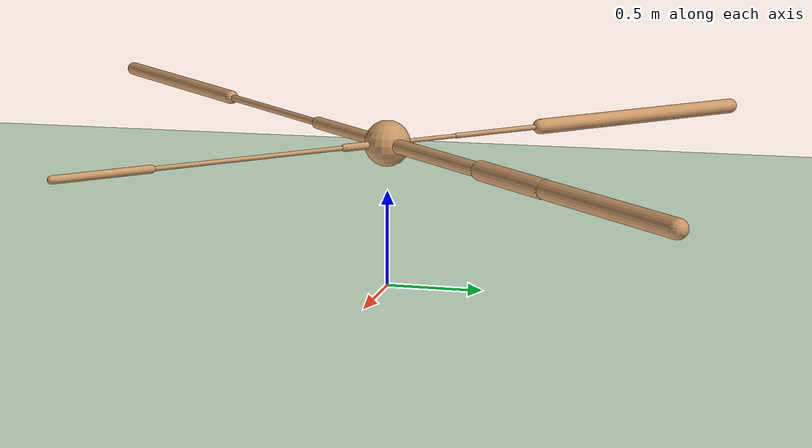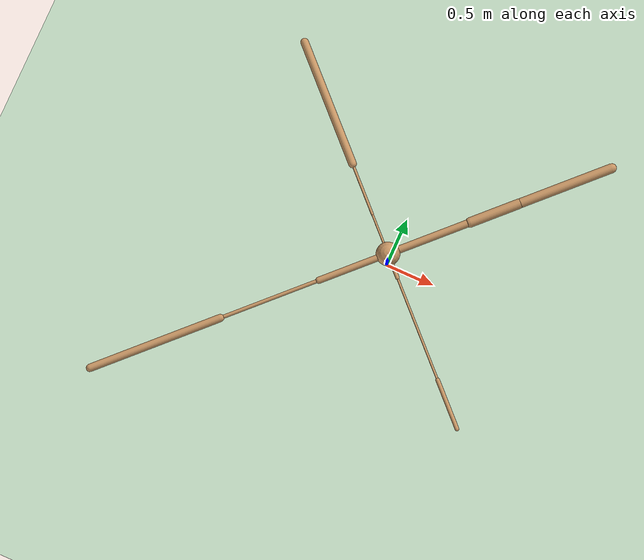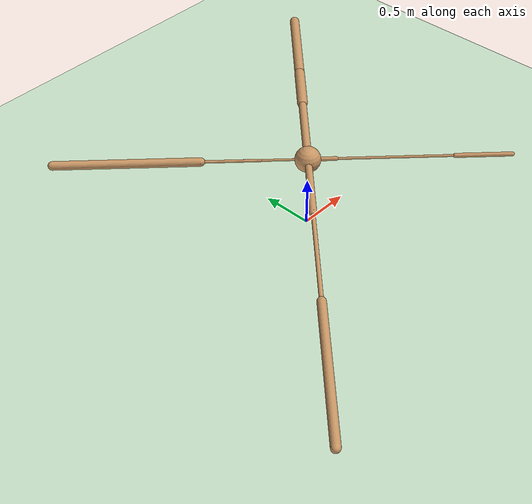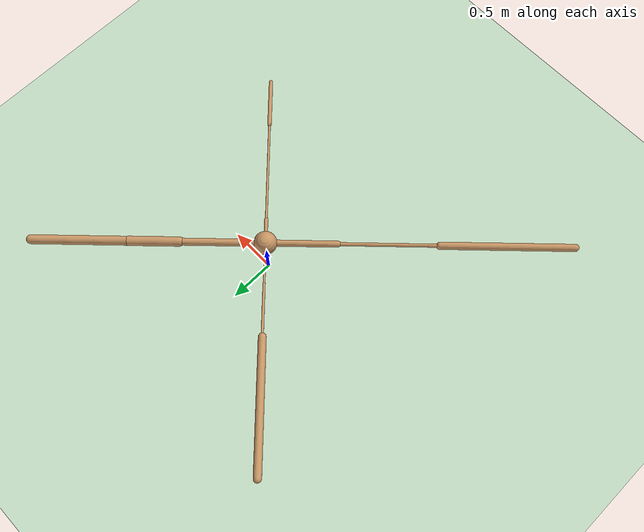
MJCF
<mujoco model="ant">
  <compiler angle="degree" coordinate="local" inertiafromgeom="true" />
  <option integrator="RK4" timestep="0.01" />
  <custom>
    <numeric data="0.0 0.0 0.55 1.0 0.0 0.0 0.0 0.0 1.0 0.0 -1.0 0.0 -1.0 0.0 1.0" name="init_qpos" />
  </custom>
  <default>
    <joint armature="1" damping="1" limited="true" />
    <geom conaffinity="0" condim="3" density="5.0" friction="1 0.5 0.5" margin="0.01" rgba="0.8 0.6 0.4 1" />
  </default>
  <asset>
    <texture builtin="gradient" height="100" rgb1="1 1 1" rgb2="0 0 0" type="skybox" width="100" />
    <texture builtin="flat" height="1278" mark="cross" markrgb="1 1 1" name="texgeom" random="0.01" rgb1="0.8 0.6 0.4" rgb2="0.8 0.6 0.4" type="cube" width="127" />
    <texture builtin="checker" height="100" name="texplane" rgb1="0 0 0" rgb2="0.8 0.8 0.8" type="2d" width="100" />
    <material name="MatPlane" reflectance="0.5" shininess="1" specular="1" texrepeat="60 60" texture="texplane" />
    <material name="geom" texture="texgeom" texuniform="true" />
  </asset>
  <worldbody>
    <light cutoff="100" diffuse="1 1 1" dir="-0 0 -1.3" directional="true" exponent="1" pos="0 0 1.3" specular=".1 .1 .1" />
    <geom conaffinity="1" condim="3" material="MatPlane" name="floor" pos="0 0 0" rgba="0.8 0.9 0.8 1" size="40 40 40" type="plane" />
    <body name="torso" pos="0 0 0.75">
      <camera name="track" mode="trackcom" pos="0 -11 5" xyaxes="1 0 0 0 0.5 1" />
      <geom name="torso_geom" pos="0 0 0" size="0.11971434950828552" type="sphere" />
      <joint armature="0" damping="0" limited="false" margin="0.01" name="root" pos="0 0 0" type="free" />
      <body name="front_left_leg" pos="0 0 0">
        <geom fromto="0 0 0 0.6112338900566101 0.6112338900566101 0" name="aux_1_geom" size="0.03797542676329613" type="capsule" />
        <body name="aux_1" pos="0.6112338900566101 0.6112338900566101 0">
          <joint axis="0 0 1" name="hip_1" pos="0.0 0.0 0.0" range="-30 30" type="hinge" />
          <geom fromto="0 0 0 0.3658680021762848 0.3658680021762848 0" name="left_leg_geom" size="0.049806758761405945" type="capsule" />
          <body name="left_leg_geom_aux" pos="0.3658680021762848 0.3658680021762848 0">
            <joint axis="-1 1 0" name="ankle_1" pos="0.0 0.0 0.0" range="30 70" type="hinge" />
            <geom fromto="0 0 0 0.690102756023407 0.690102756023407 0" name="left_ankle_geom" size="0.047834254801273346" type="capsule" />
          </body>
        </body>
      </body>
      <body name="front_right_leg" pos="0 0 0">
        <geom fromto="0 0 0 -0.2978582978248596 0.2978582978248596 0" name="aux_2_geom" size="0.011017609387636185" type="capsule" />
        <body name="aux_2" pos="-0.2978582978248596 0.2978582978248596 0">
          <joint axis="0 0 1" name="hip_2" pos="0.0 0.0 0.0" range="-30 30" type="hinge" />
          <geom fromto="0 0 0 -0.3803653120994568 0.3803653120994568 0" name="right_leg_geom" size="0.01359892264008522" type="capsule" />
          <body name="right_leg_geom_aux" pos="-0.3803653120994568 0.3803653120994568 0">
            <joint axis="1 1 0" name="ankle_2" pos="0.0 0.0 0.0" range="-70 -30" type="hinge" />
            <geom fromto="0 0 0 -0.9285074472427368 0.9285074472427368 0" name="right_ankle_geom" size="0.04065631702542305" type="capsule" />
          </body>
        </body>
      </body>
      <body name="back_leg" pos="0 0 0">
        <geom fromto="0 0 0 -0.5124484896659851 -0.5124484896659851 0" name="aux_3_geom" size="0.03329575061798096" type="capsule" />
        <body name="aux_3" pos="-0.5124484896659851 -0.5124484896659851 0">
          <joint axis="0 0 1" name="hip_3" pos="0.0 0.0 0.0" range="-30 30" type="hinge" />
          <geom fromto="0 0 0 -0.7267749905586243 -0.7267749905586243 0" name="back_leg_geom" size="0.018723901361227036" type="capsule" />
          <body name="back_leg_geom_aux" pos="-0.7267749905586243 -0.7267749905586243 0">
            <joint axis="-1 1 0" name="ankle_3" pos="0.0 0.0 0.0" range="-70 -30" type="hinge" />
            <geom fromto="0 0 0 -0.957274317741394 -0.957274317741394 0" name="third_ankle_geom" size="0.03893883526325226" type="capsule" />
          </body>
        </body>
      </body>
      <body name="right_back_leg" pos="0 0 0">
        <geom fromto="0 0 0 0.18020157516002655 -0.18020157516002655 0" name="aux_4_geom" size="0.01956494152545929" type="capsule" />
        <body name="aux_4" pos="0.18020157516002655 -0.18020157516002655 0">
          <joint axis="0 0 1" name="hip_4" pos="0.0 0.0 0.0" range="-30 30" type="hinge" />
          <geom fromto="0 0 0 0.7593034505844116 -0.7593034505844116 0" name="rightback_leg_geom" size="0.01185454148799181" type="capsule" />
          <body name="rightback_leg_geom_aux" pos="0.7593034505844116 -0.7593034505844116 0">
            <joint axis="1 1 0" name="ankle_4" pos="0.0 0.0 0.0" range="30 70" type="hinge" />
            <geom fromto="0 0 0 0.3632640242576599 -0.3632640242576599 0" name="fourth_ankle_geom" size="0.020842941477894783" type="capsule" />
          </body>
        </body>
      </body>
    </body>
  </worldbody>
  <actuator>
    <motor ctrllimited="true" ctrlrange="-1.0 1.0" joint="hip_4" gear="150" />
    <motor ctrllimited="true" ctrlrange="-1.0 1.0" joint="ankle_4" gear="150" />
    <motor ctrllimited="true" ctrlrange="-1.0 1.0" joint="hip_1" gear="150" />
    <motor ctrllimited="true" ctrlrange="-1.0 1.0" joint="ankle_1" gear="150" />
    <motor ctrllimited="true" ctrlrange="-1.0 1.0" joint="hip_2" gear="150" />
    <motor ctrllimited="true" ctrlrange="-1.0 1.0" joint="ankle_2" gear="150" />
    <motor ctrllimited="true" ctrlrange="-1.0 1.0" joint="hip_3" gear="150" />
    <motor ctrllimited="true" ctrlrange="-1.0 1.0" joint="ankle_3" gear="150" />
  </actuator>
</mujoco>
